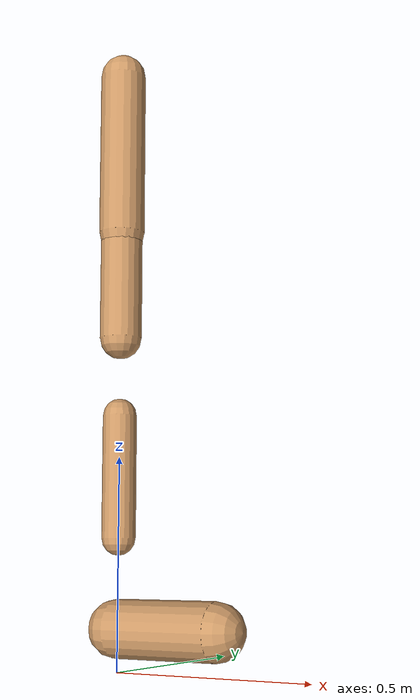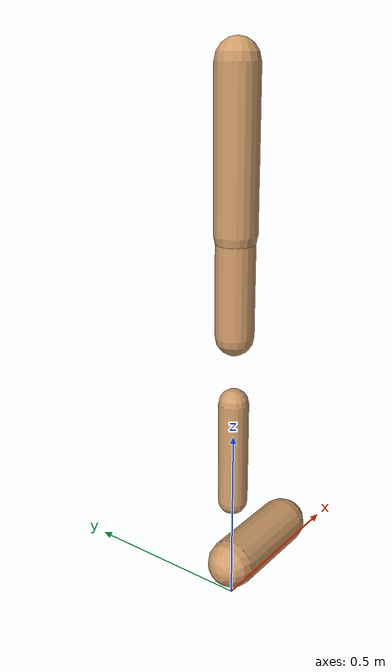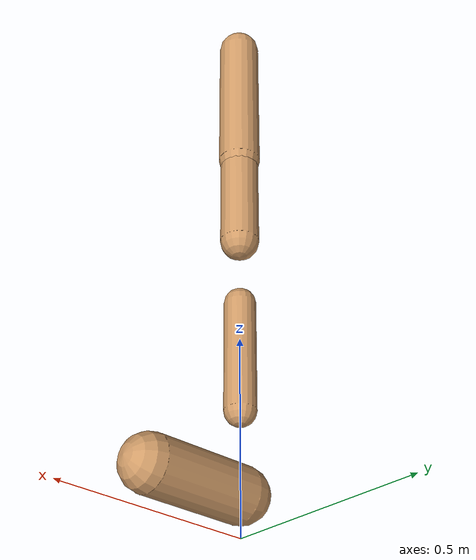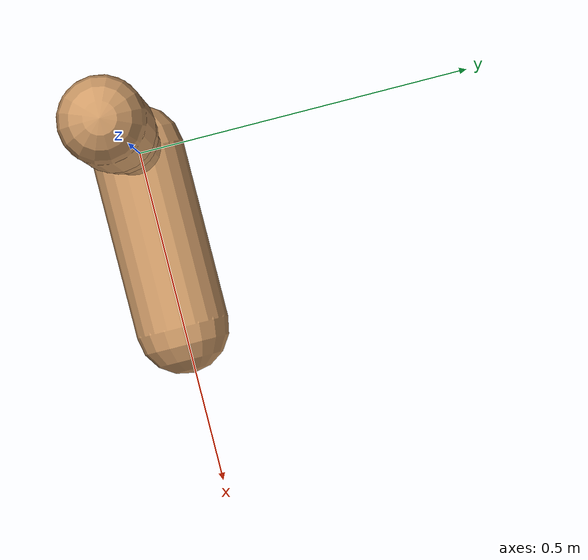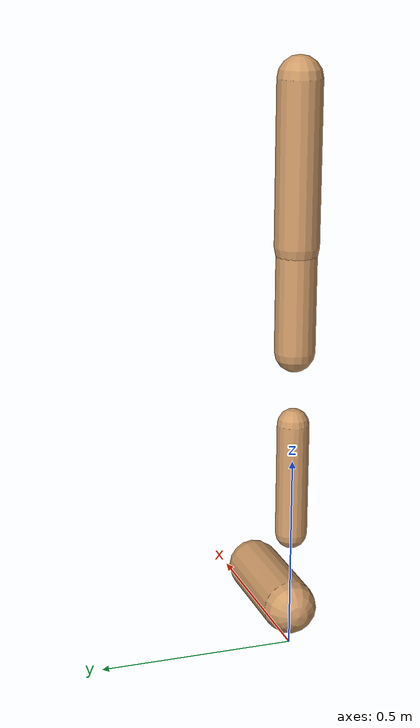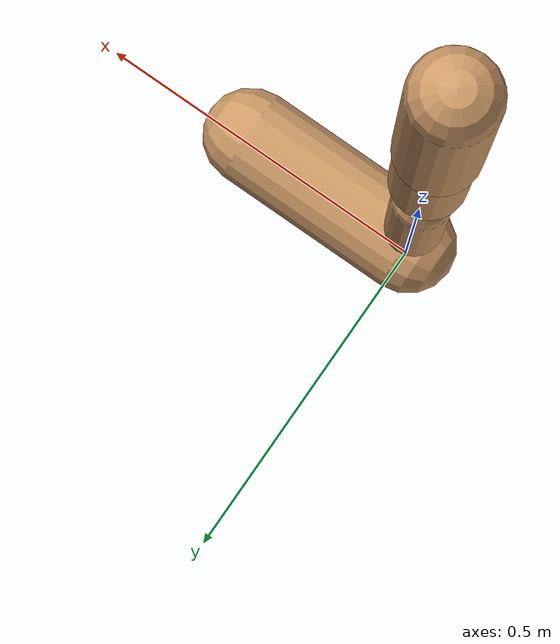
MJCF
<mujoco model="walker2d">
  <compiler angle="degree" coordinate="global" inertiafromgeom="true" />
  <default>
    <joint armature="0.01" damping=".1" limited="true" />
    <geom conaffinity="0" condim="3" contype="1" density="1000" friction="0.8 .1 .1" rgba="0.8 0.6 .4 1" />
  </default>
  <option integrator="RK4" timestep="0.002" />
  <worldbody>

    <body name="torso" pos="0 0 -0.3971819876563026">
      <joint armature="0" axis="1 0 0" damping="0" limited="false" name="ignorex" pos="0 0 0" stiffness="0" type="slide" />
      <joint armature="0" axis="0 0 1" damping="0" limited="false" name="ignorez" pos="0 0 0" ref="1.25" stiffness="0" type="slide" />
      <joint armature="0" axis="0 1 0" damping="0" limited="false" name="ignorey" pos="0 0 0" stiffness="0" type="hinge" />
      <geom fromto="0 0 1.45 0 0 1.05" name="torso_geom" size="0.05507851334643365" type="capsule" />
      <body name="thigh">
        <joint axis="0 -1 0" name="thigh_joint" pos="0 0 1.05" range="-150 0" type="hinge" />
        <geom fromto="0.0 0.0 1.05 0.0 0.0 0.7881388362582485" name="thigh_geom" size="0.05037051842847509" type="capsule" />
        <body name="leg" pos="0.0 0.0 0.18813883625824857">
          <joint axis="0 -1 0" name="leg_joint" pos="0 0 0.6" range="-150 0" type="hinge" />
          <geom fromto="0.0 0.0 0.6 0.0 0.0 0.30904315139805394" name="leg_geom" size="0.04029641474278007" type="capsule" />
          <body name="foot" pos="0.0 0.0 0.20904315139805393">
            <joint axis="0 -1 0" name="foot_joint" pos="0 0 0.1" range="-45 45" type="hinge" />
            <geom fromto="-0.0 0.0 0.1 0.2660978421084335 0.0 0.1" name="foot_geom" size="0.0684608633266812" type="capsule" />
          </body>
        </body>
      </body>

      <body name="thigh_left">
        <joint axis="0 -1 0" name="thigh_left_joint" pos="0 0 1.05" range="-150 0" type="hinge" />
        <geom fromto="0.0 0.0 1.05 0.0 0.0 0.7881388362582485" name="thigh_left_geom" rgba=".7 .3 .6 1" size="0.05037051842847509" type="capsule" />
        <body name="leg_left" pos="0.0 0.0 0.18813883625824857">
          <joint axis="0 -1 0" name="leg_left_joint" pos="0 0 0.6" range="-150 0" type="hinge" />
          <geom fromto="0.0 0.0 0.6 0.0 0.0 0.30904315139805394" name="leg_left_geom" rgba=".7 .3 .6 1" size="0.04029641474278007" type="capsule" />
          <body name="foot_left" pos="0.0 0.0 0.20904315139805393">
            <joint axis="0 -1 0" name="foot_left_joint" pos="0 0 0.1" range="-45 45" type="hinge" />
            <geom fromto="-0.0 0.0 0.1 0.2660978421084335 0.0 0.1" name="foot_left_geom" rgba=".7 .3 .6 1" size="0.0684608633266812" type="capsule" />
          </body>
        </body>
      </body>
    </body>
  </worldbody>
  <actuator>

    <motor ctrllimited="true" ctrlrange="-1.0 1.0" gear="100" joint="thigh_joint" />
    <motor ctrllimited="true" ctrlrange="-1.0 1.0" gear="100" joint="leg_joint" />
    <motor ctrllimited="true" ctrlrange="-1.0 1.0" gear="100" joint="foot_joint" />
    <motor ctrllimited="true" ctrlrange="-1.0 1.0" gear="100" joint="thigh_left_joint" />
    <motor ctrllimited="true" ctrlrange="-1.0 1.0" gear="100" joint="leg_left_joint" />
    <motor ctrllimited="true" ctrlrange="-1.0 1.0" gear="100" joint="foot_left_joint" />

  </actuator>
</mujoco>
